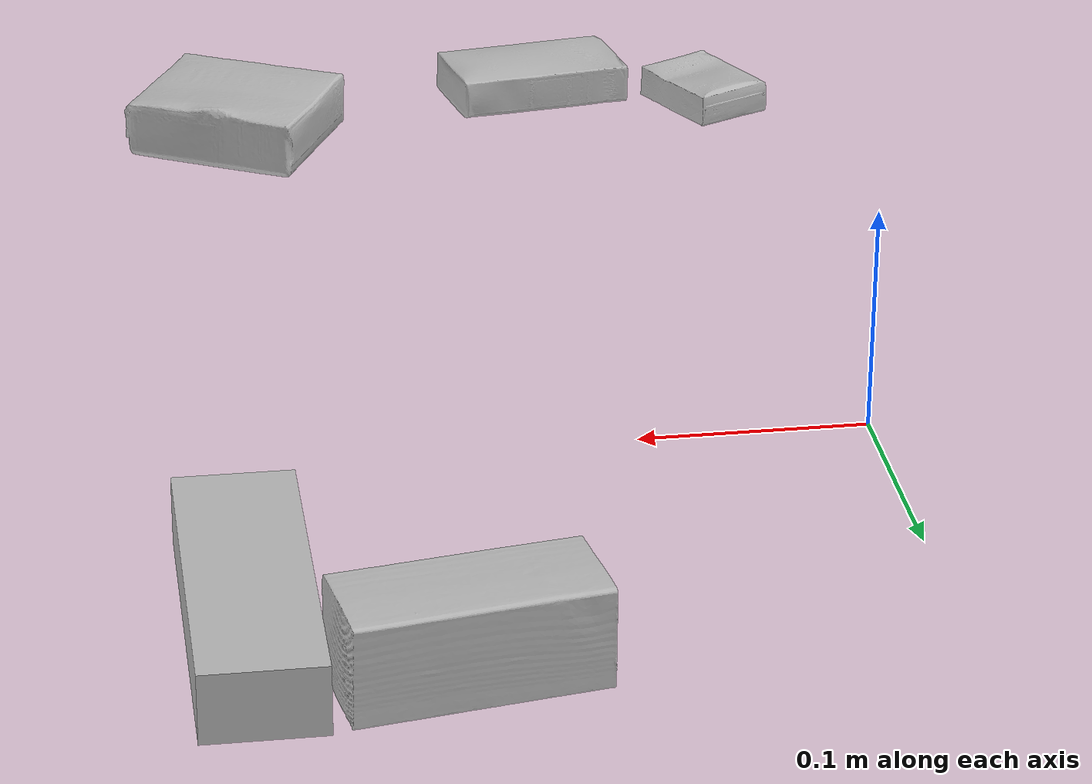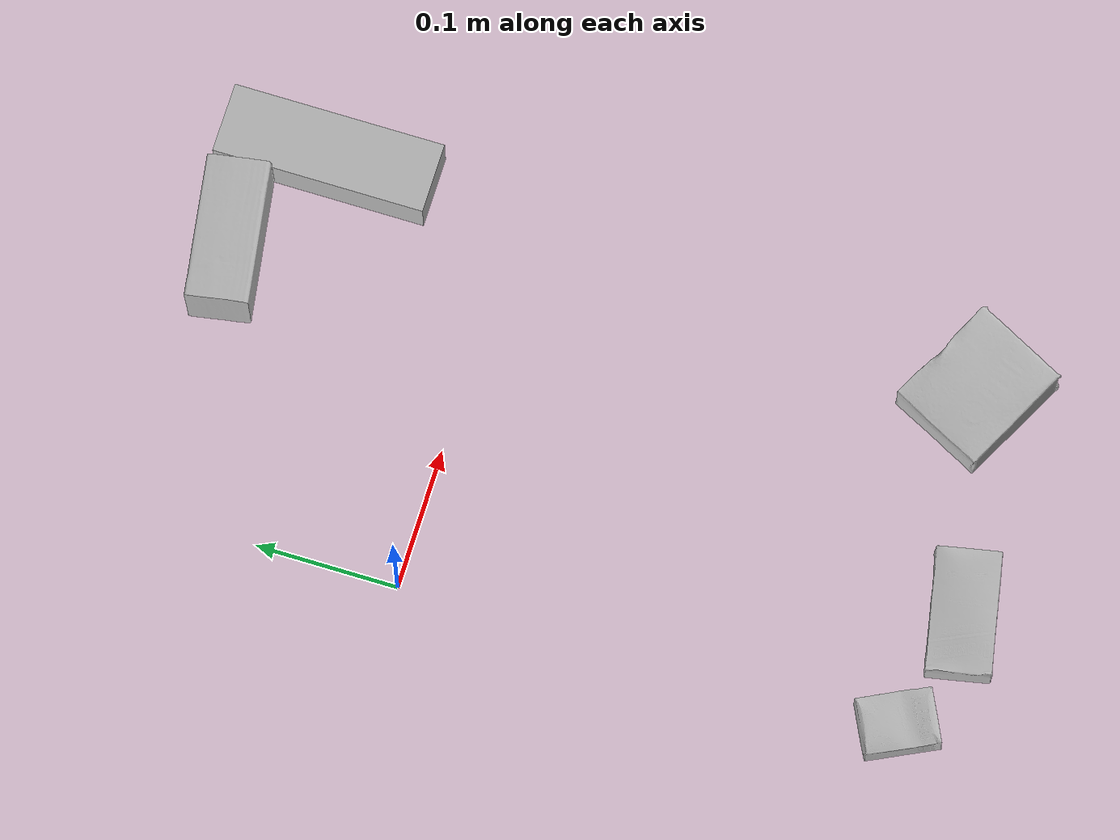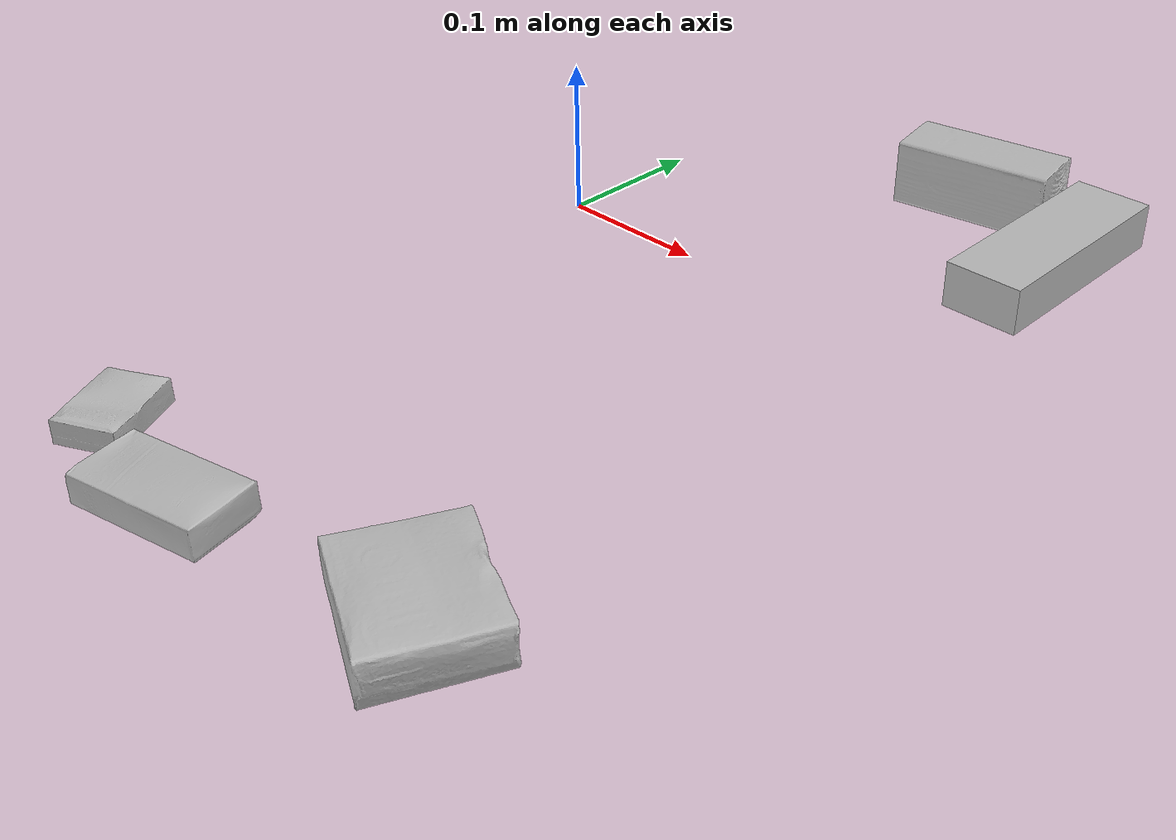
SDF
<sdf version="1.4">
  <world name="default">
    <light name="light1" type="point">
      <pose>0 0 1 0 0 0</pose>
      <diffuse>3 3 3 1</diffuse>
      <specular>3 3 3 1</specular>
    </light>
    <light name="light2" type="point">
      <pose>0 0.5 2 0 0 0</pose>
      <diffuse>1 1 1 1</diffuse>
      <specular>1 1 1 1</specular>
    </light>
    <light name="light3" type="point">
      <pose>0 0.5 2 0 0 0</pose>
      <diffuse>3 3 3 1</diffuse>
      <specular>3 3 3 1</specular>
    </light>
    <scene>
      <ambient>0.7 0.7 0.7</ambient>
    </scene>
    <model name="box1">
      <link name="link_box1">
        <collision name="default">
          <geometry>
            <mesh>
              <uri>model://sugar_box/collision_meshes/collision.obj</uri>
              <scale>0.5 0.5 0.5</scale>
            </mesh>
          </geometry>
          <surface>
            <friction>
              <ode>
                <mu>0.5</mu>
                <mu2>0.5</mu2>
              </ode>
            </friction>
          <contact>
        <ode>
            <max_vel>0</max_vel>
            <min_depth>0.0001</min_depth>
            <kp>1e8</kp>
        </ode>
    </contact></surface>
        </collision>
        <visual name="default">
          <geometry>
            <mesh>
              <uri>model://sugar_box/visual_meshes/visual.dae</uri>
              <scale>0.5 0.5 0.5</scale>
            </mesh>
          </geometry>
        </visual>
        <inertial>
          <mass>0.07249404489994049</mass>
          <pose>0.0005171863012947142 1.924554817378521e-05 -0.00018182402709499002 -0.00040462618385709627 0.0010506635220579009 0.0026153790218148127</pose>
          <inertia>
            <ixx>1.5100456e-05</ixx>
            <iyy>4.8807786e-05</iyy>
            <izz>5.842874e-05</izz>
            <ixy>0</ixy>
            <ixz>0</ixz>
            <iyz>0</iyz>
          </inertia>
        </inertial>
      </link>
      <pose>0.09063514322042465 -0.3690275251865387 0.011399305425584316 0.0007745418554809249 -0.023433006548809938 0.19323165423951236</pose>
    </model>
    <model name="box2">
      <link name="link_box2">
        <collision name="default">
          <geometry>
            <mesh>
              <uri>model://cracker_box/collision_meshes/collision.obj</uri>
              <scale>0.25 0.25 0.25</scale>
            </mesh>
          </geometry>
          <surface>
            <friction>
              <ode>
                <mu>0.5</mu>
                <mu2>0.5</mu2>
              </ode>
            </friction>
          <contact>
        <ode>
            <max_vel>0</max_vel>
            <min_depth>0.0001</min_depth>
            <kp>1e8</kp>
        </ode>
    </contact></surface>
        </collision>
        <visual name="default">
          <geometry>
            <mesh>
              <uri>model://cracker_box/visual_meshes/visual.dae</uri>
              <scale>0.25 0.25 0.25</scale>
            </mesh>
          </geometry>
        </visual>
        <inertial>
          <mass>0.019660919904708862</mass>
          <pose>0.00023660410079173744 6.358561222441494e-05 -0.0004257383698131889 -0.00031620756431779875 -0.011106489600602764 0.0025467940703044144</pose>
          <inertia>
            <ixx>3.125538e-06</ixx>
            <iyy>5.1608768e-06</iyy>
            <izz>7.365045e-06</izz>
            <ixy>0</ixy>
            <ixz>0</ixz>
            <iyz>0</iyz>
          </inertia>
        </inertial>
      </link>
      <pose>0.0059534101746976376 -0.3484514653682709 0.009096029214560986 -0.014050218484991692 -0.005016419758508467 2.0294745046387797</pose>
    </model>
    <model name="box3">
      <link name="link_box3">
        <collision name="default">
          <geometry>
            <mesh>
              <uri>model://wood_block/collision_meshes/collision.obj</uri>
              <scale>0.5 0.5 0.5</scale>
            </mesh>
          </geometry>
          <surface>
            <friction>
              <ode>
                <mu>0.5</mu>
                <mu2>0.5</mu2>
              </ode>
            </friction>
          <contact>
        <ode>
            <max_vel>0</max_vel>
            <min_depth>0.0001</min_depth>
            <kp>1e8</kp>
        </ode>
    </contact></surface>
        </collision>
        <visual name="default">
          <geometry>
            <mesh>
              <uri>model://wood_block/visual_meshes/visual.dae</uri>
              <scale>0.5 0.5 0.5</scale>
            </mesh>
          </geometry>
        </visual>
        <inertial>
          <mass>0.22331082820892334</mass>
          <pose>-2.9066577553749084e-06 -0.000285404734313488 0.00013204292918089777 -0.0522110088927385 -0.005192696049127085 -0.006861379582621758</pose>
          <inertia>
            <ixx>7.470592e-05</ixx>
            <iyy>0.00023599603</iyy>
            <izz>0.0002351133</izz>
            <ixy>0</ixy>
            <ixz>0</ixz>
            <iyz>0</iyz>
          </inertia>
        </inertial>
      </link>
      <pose>0.19582977890968323 0.18166065216064453 0.022629259154200554 -0.005208548835166374 0.0057186761248519576 0.16344661948575986</pose>
    </model>
    <model name="box4">
      <link name="link_box4">
        <collision name="default">
          <geometry>
            <mesh>
              <uri>model://jenga/collision_meshes/collision.obj</uri>
              <scale>1.0 1.0 1.0</scale>
            </mesh>
          </geometry>
          <surface>
            <friction>
              <ode>
                <mu>0.5</mu>
                <mu2>0.5</mu2>
              </ode>
            </friction>
          <contact>
        <ode>
            <max_vel>0</max_vel>
            <min_depth>0.0001</min_depth>
            <kp>1e8</kp>
        </ode>
    </contact></surface>
        </collision>
        <visual name="default">
          <geometry>
            <mesh>
              <uri>model://jenga/visual_meshes/visual.dae</uri>
              <scale>1.0 1.0 1.0</scale>
            </mesh>
          </geometry>
        </visual>
        <inertial>
          <mass>0.1217927634716034</mass>
          <pose>-2.502855807051674e-07 -0.00010250010382151231 -4.0923401684267446e-05 0.0 -7.34215461761844e-07 0.0</pose>
          <inertia>
            <ixx>3.370301e-05</ixx>
            <iyy>0.00022837071</iyy>
            <izz>0.00024380515</izz>
            <ixy>0</ixy>
            <ixz>0</ixz>
            <iyz>0</iyz>
          </inertia>
        </inertial>
      </link>
      <pose>0.27543118596076965 0.13613688945770264 0.01499999687075615 1.8575065802508353e-08 1.0221872998073816e-09 -1.5711819384804684</pose>
    </model>
    <model name="box5">
      <link name="link_box5">
        <collision name="default">
          <geometry>
            <mesh>
              <uri>model://gelatin_box/collision_meshes/collision.obj</uri>
              <scale>1.0 1.0 1.0</scale>
            </mesh>
          </geometry>
          <surface>
            <friction>
              <ode>
                <mu>0.5</mu>
                <mu2>0.5</mu2>
              </ode>
            </friction>
          <contact>
        <ode>
            <max_vel>0</max_vel>
            <min_depth>0.0001</min_depth>
            <kp>1e8</kp>
        </ode>
    </contact></surface>
        </collision>
        <visual name="default">
          <geometry>
            <mesh>
              <uri>model://gelatin_box/visual_meshes/visual.dae</uri>
              <scale>1.0 1.0 1.0</scale>
            </mesh>
          </geometry>
        </visual>
        <inertial>
          <mass>0.09479870647192001</mass>
          <pose>0.0004319618456065655 0.00011156871914863586 -0.0003640321083366871 -0.0010503720924044775 -0.0047558191559584585 0.01644055760930107</pose>
          <inertia>
            <ixx>6.6920154e-05</ixx>
            <iyy>4.780071e-05</iyy>
            <izz>0.00010186739</izz>
            <ixy>0</ixy>
            <ixz>0</ixz>
            <iyz>0</iyz>
          </inertia>
        </inertial>
      </link>
      <pose>0.24444355070590973 -0.3345690965652466 0.015168308280408382 0.0055973769278362985 -0.007304443411473149 1.0879518004632303</pose>
    </model>
  <physics type="ode">
      <max_contacts>50</max_contacts>
      <ode>
        <solver>
          <type>quick</type>
          <iters>75</iters>
        </solver>
        <constraints>
          <contact_max_correcting_vel>0</contact_max_correcting_vel>
          <contact_surface_layer>0</contact_surface_layer>
        </constraints>
      </ode>
    </physics></world>
</sdf>
